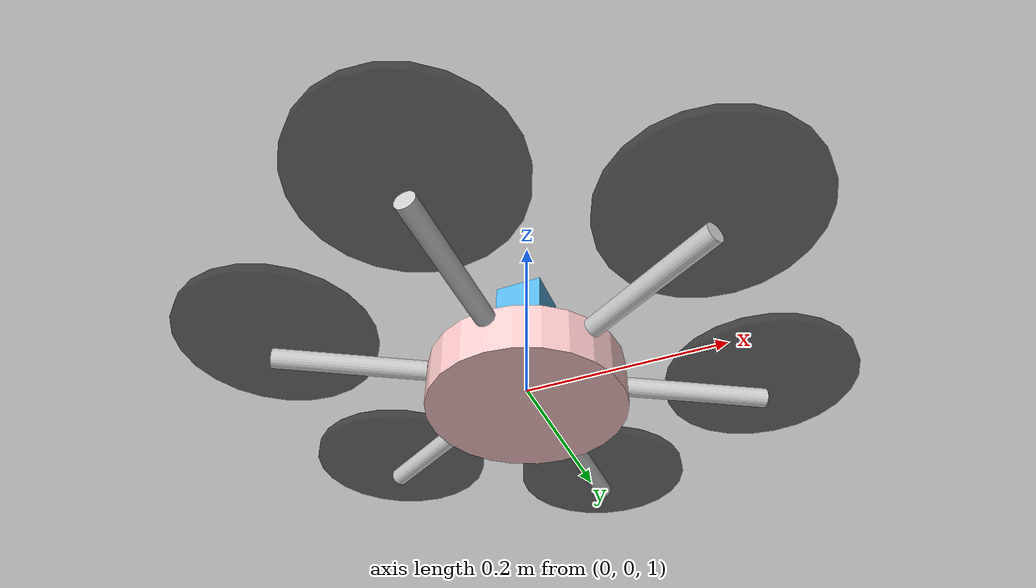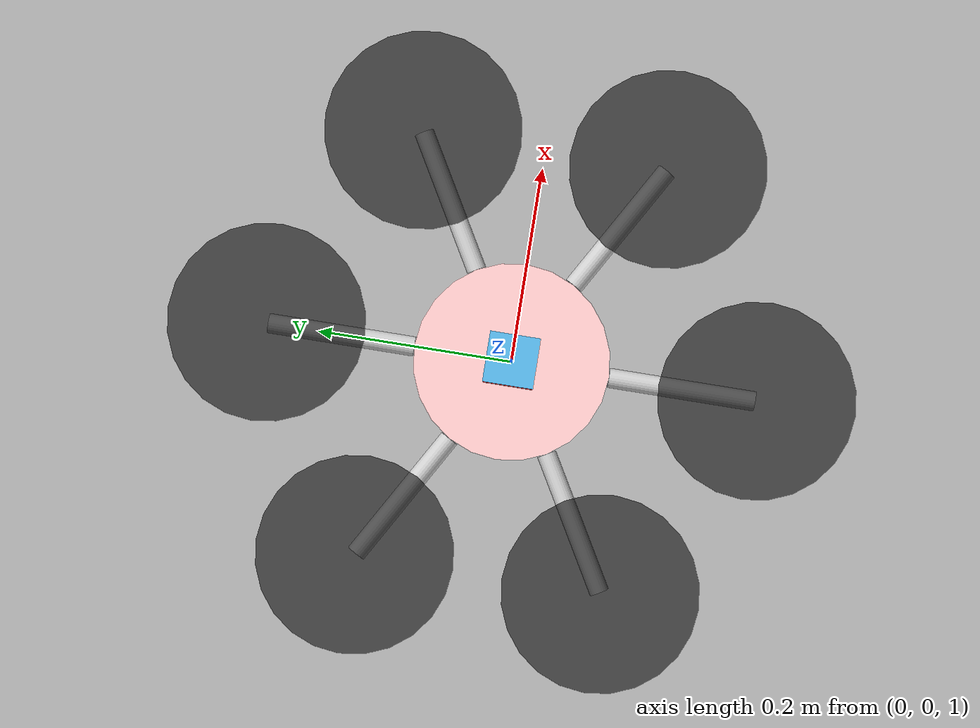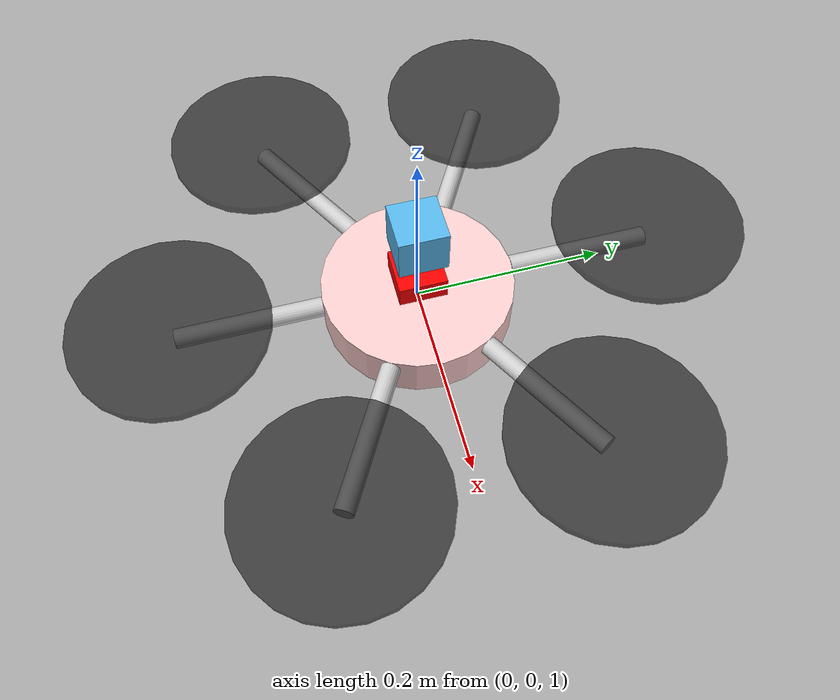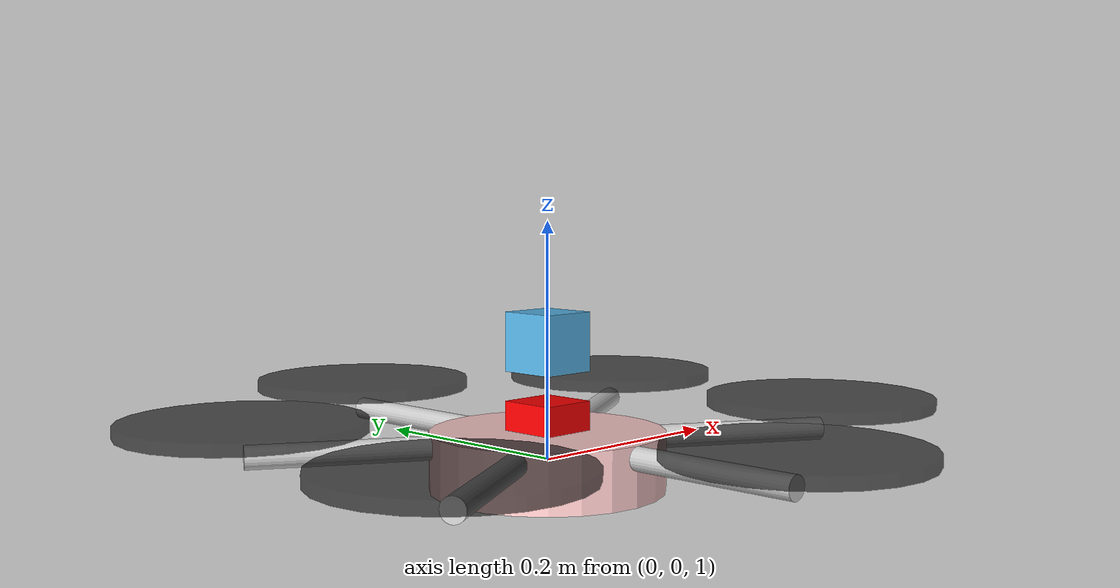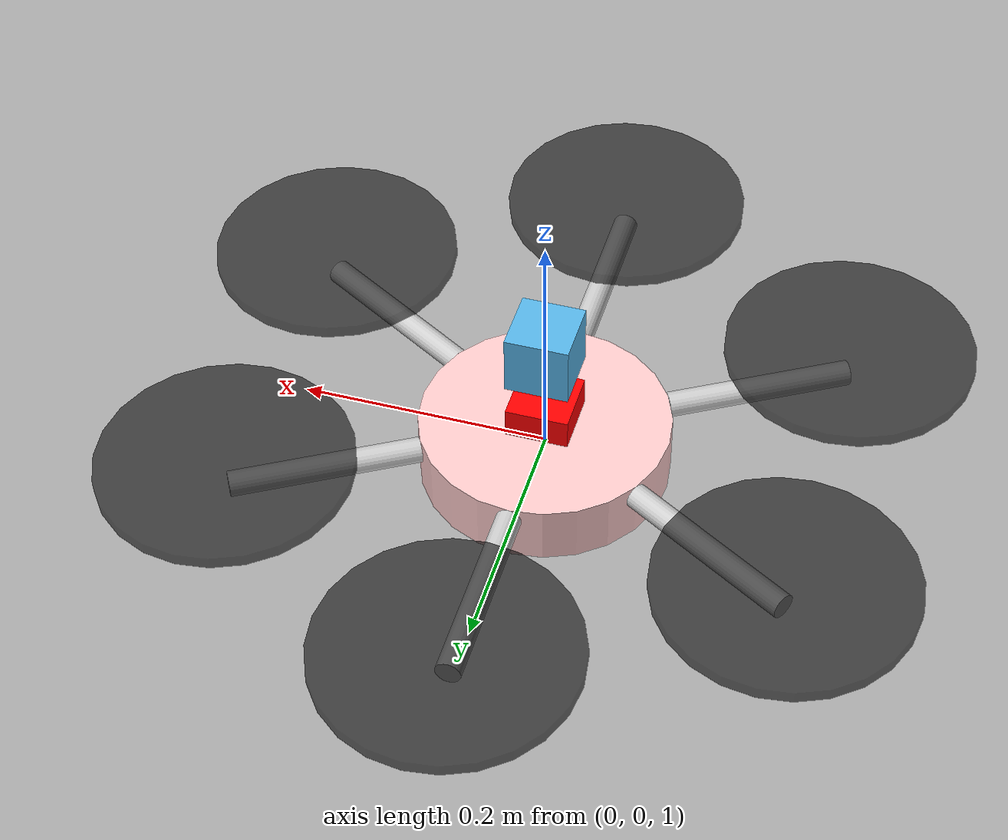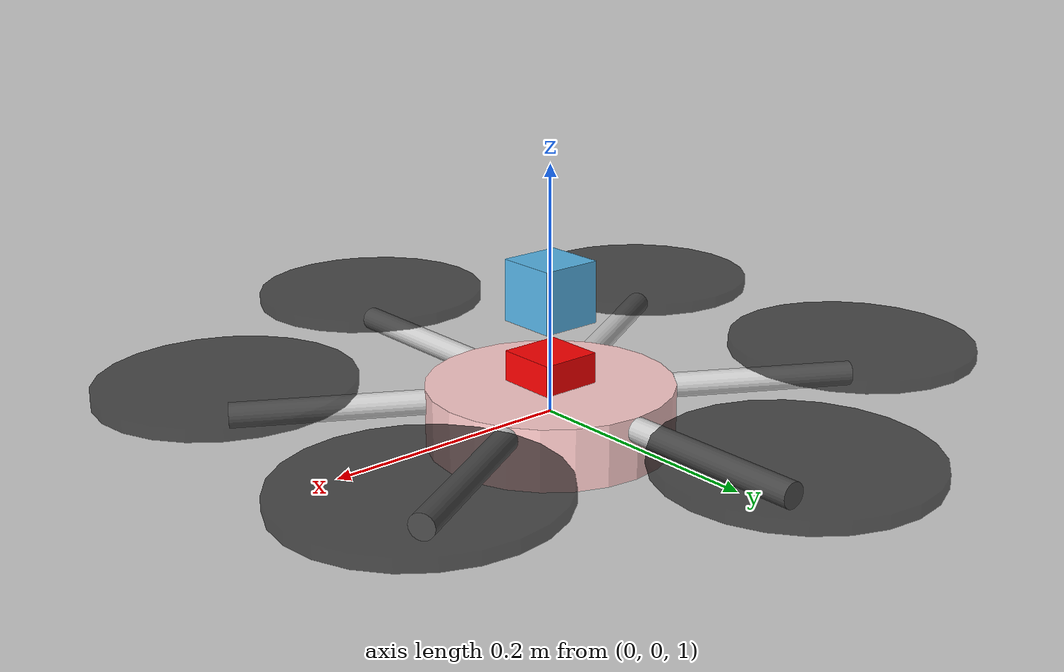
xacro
<?xml version="1.0"?>

<robot xmlns:xacro="http://wiki.ros.org/xacro" name="drone">

  <!-- properties -->
  <xacro:property name="frame_radius" value="0.1"/>
  <xacro:property name="frame_height" value="0.05"/>
  <xacro:property name="frame_mass" value="0.88"/>
  <xacro:property name="arm_radius" value="0.01"/>
  <xacro:property name="arm_length" value="0.15"/>
  <xacro:property name="arm_mass" value="0.01"/>
  <xacro:property name="propeller_radius" value="0.1"/>
  <xacro:property name="propeller_height" value="0.01"/>
  <xacro:property name="propeller_height_offset" value="0.025"/>
  <xacro:property name="propeller_mass" value="0.01"/>

<xacro:macro name="cylinder_inertial" params="radius height mass *origin">
  <inertial>
    <mass value="${mass}"/>
    <xacro:insert_block name="origin"/>
    <inertia
      ixx="${0.0833333 * mass * (3 * radius * radius + height * height)}"
      ixy="0.0"
      ixz="0.0"
      iyy="${0.0833333 * mass * (3 * radius * radius + height * height)}"
      iyz="0.0"
      izz="${0.5 * mass * radius * radius}"/>
  </inertial>
</xacro:macro>

<link name="drone">
  <visual>
    <origin xyz="0 0 1" rpy="0 0 0"/>
    <geometry>
      <cylinder radius="${frame_radius}" length="${frame_height}"/>
    </geometry>
    <material name="frame_material"/>
  </visual>
  <collision>
    <origin xyz="0 0 1" rpy="0 0 0"/>
    <geometry>
      <cylinder radius="${frame_radius}" length="${frame_height}"/>
    </geometry>
  </collision>
  <xacro:cylinder_inertial radius="${frame_radius}" height="${frame_height}" mass="${frame_mass}">
    <origin xyz="0 0 1" rpy="0 0 0" />
  </xacro:cylinder_inertial>
</link>

<link name="camera_link">
  <visual>
  <origin xyz="0 0 1.05" rpy="0 0 -1.5708"/>
    <geometry>
      <box size="0.05 0.05 0.05"/>
    </geometry>
  </visual>
  <collision>
    <geometry>
      <box size="0.05 0.05 0.05"/>
    </geometry>
  </collision>
  <inertial>
    <mass value="0.0000000001"/>
    <origin rpy="0 0 0" xyz="0 0 1"/>
    <inertia ixx="0.000001" ixy="0.000001" ixz="0.000001" iyy="0.000001" iyz="0.000001" izz="0.000001"/>
  </inertial>
  <material name="camera_material"/>
</link>

<joint name="camera_joint" type="fixed">
  <parent link="drone"/>
  <child link="camera_link"/>
  <origin xyz="0 0 0.05" rpy="0 0 0"/>
  <axis xyz="1 0 0"/>
  <limit lower="-3.14159" upper="3.14159" effort="10" velocity="3.14159"/>
</joint>

<xacro:macro name="arm" params="i">
  <link name="arm${i}">
    <visual>
      <origin xyz="${cos((i-1)*pi/3+pi/6)*(frame_radius+arm_length/2)} ${sin((i-1)*pi/3+pi/6)*(frame_radius+arm_length/2)} ${(frame_height+2)/2-arm_radius}" rpy="0 ${pi/2} ${(i-1)*pi/3+pi/6}"/>
      <geometry>
        <cylinder radius="${arm_radius}" length="${arm_length}"/>
      </geometry>
      <material name="arm_material"/>
    </visual>
    <collision>
      <origin xyz="${cos((i-1)*pi/3+pi/6)*(frame_radius+arm_length/2)} ${sin((i-1)*pi/3+pi/6)*(frame_radius+arm_length/2)} ${(frame_height+2)/2-arm_radius}" rpy="0 ${pi/2} ${(i-1)*pi/3+pi/6}"/>
      <geometry>
        <cylinder radius="${arm_radius}" length="${arm_length}"/>
      </geometry>
    </collision>
    <xacro:cylinder_inertial radius="${arm_radius}" height="${arm_length}" mass="${arm_mass}">
      <origin xyz="${cos((i-1)*pi/3+pi/6)*(frame_radius+arm_length/2)} ${sin((i-1)*pi/3+pi/6)*(frame_radius+arm_length/2)} ${(frame_height+2)/2-arm_radius}" rpy="0 ${pi/2} ${(i-1)*pi/3+pi/6}"/>
    </xacro:cylinder_inertial>
  </link>
<joint name="frame_arm${i}" type="fixed">
  <parent link="drone"/>
  <child link="arm${i}"/>
</joint>
    <gazebo reference="arm${i}">
      <material>Gazebo/Blue</material>
    </gazebo>
</xacro:macro>

<xacro:macro name="propeller" params="i mat">
  <link name="propeller${i}">
    <visual>
      <origin xyz="0 0 1" rpy="0 0 0"/>
      <geometry>
        <cylinder radius="${propeller_radius}" length="${propeller_height}"/>
      </geometry>
      <material name="propeller_material"/>
    </visual>
    <collision>
      <origin xyz="0 0 1" rpy="0 0 0"/>
      <geometry>
        <cylinder radius="${propeller_radius}" length="${propeller_height}"/>
      </geometry>
    </collision>
    <xacro:cylinder_inertial radius="${propeller_radius}" height="${propeller_height}" mass="${propeller_mass}">
      <origin xyz="0 0 1" rpy="0 0 0"/>
    </xacro:cylinder_inertial>
  </link>
<joint name="arm${i}_propeller${i}" type="revolute">
  <parent link="arm${i}"/>
  <child link="propeller${i}"/>
  <origin xyz="${cos((i-1)*pi/3+pi/6)*(frame_radius+arm_length)} ${sin((i-1)*pi/3+pi/6)*(frame_radius+arm_length)} ${frame_height/2-arm_radius+propeller_height_offset}" rpy="0 0 0"/>
  <axis xyz="1 0 0"/>
  <limit lower="0" upper="0" effort="0" velocity="0"/>
</joint>
    <gazebo reference="propeller${i}">
      <material>${mat}</material>
    </gazebo>
</xacro:macro>

<!-- Xacro -->
<xacro:arm i="1"/>
<xacro:arm i="2"/>
<xacro:arm i="3"/>
<xacro:arm i="4"/>
<xacro:arm i="5"/>
<xacro:arm i="6"/>

<xacro:propeller i="1" mat="Gazebo/RedTransparent"/>
<xacro:propeller i="2" mat="Gazebo/BlackTransparent"/>
<xacro:propeller i="3" mat="Gazebo/BlueTransparent"/>
<xacro:propeller i="4" mat="Gazebo/BlueTransparent"/>
<xacro:propeller i="5" mat="Gazebo/BlackTransparent"/>
<xacro:propeller i="6" mat="Gazebo/RedTransparent"/>

  <!-- materials-->

<gazebo reference="drone">
  <material>Gazebo/Orange</material>
</gazebo>

<gazebo reference="depth_camera">
  <material>Gazebo/Yellow</material>
</gazebo>

<material name="frame_material">
  <color rgba="1 0.8 0.8 1"/>
</material>

<material name="arm_material">
  <color rgba="0.8 0.8 0.8 1"/>
</material>

<material name="propeller_material">
  <color rgba="0 0 0 0.6"/>
</material>

<material name="camera_material">
  <color rgba="1 0 0 0.6"/>
</material>

<link name="hokuyo_link">
	    <collision>
	      <origin xyz="0 0 1.025" rpy="0 0 0"/>
	      <geometry>
		<box size="0.05 0.05 0.05"/>
	      </geometry>
	    </collision>
	    <visual>
	      <origin xyz="0 0 1.025" rpy="0 0 0"/>
	      <geometry>
		<box size="0.05 0.05 0.05"/>
	      </geometry>
	      <material name="red">
		<color rgba="1 0 0 1"/>
	      </material>
	    </visual>
	    <inertial>
	      <mass value="1e-5" />
	      <origin xyz="0 0 0" rpy="0 0 0"/>
	      <inertia ixx="1e-6" ixy="0" ixz="0" iyy="1e-6" iyz="0" izz="1e-6" />
	    </inertial>
 	 </link>

 	 <joint name="hokuyo_joint" type="fixed">
	    <axis xyz="0 1 0" />
	    <origin xyz="0.0 0 0.0" rpy="0 0 0"/>
	    <parent link="drone"/>
	    <child link="hokuyo_link"/>
	 </joint>

<!-- Plugins -->

<!-- Z Controller -->
<gazebo>
    <plugin name="drone_plugin" filename="libdrone_plugin.so">
      <updateRate>100</updateRate>
    </plugin>
  </gazebo>

<!-- X-Y Controller -->
<gazebo>
  <plugin name="object_controller" filename="libgazebo_ros_planar_move.so">
    <commandTopic>cmd_vel</commandTopic>
    <odometryTopic>odom</odometryTopic>
    <odometryFrame>odom</odometryFrame>
    <odometryRate>20.0</odometryRate>
    <robotBaseFrame>drone</robotBaseFrame>
  </plugin>
</gazebo>

 <gazebo>
    <plugin name="gazebo_ros_control" filename="libgazebo_ros_control.so">
      <legacyModeNS>true</legacyModeNS>
    </plugin>
  </gazebo>

   <!-- camera -->
  <gazebo reference="camera_link">
    <sensor type="camera" name="camera1">
      <update_rate>30.0</update_rate>
      <camera name="head">
        <horizontal_fov>1.3962634</horizontal_fov>
        <image>
          <width>800</width>
          <height>800</height>
          <format>R8G8B8</format>
        </image>
        <clip>
          <near>0.02</near>
          <far>300</far>
        </clip>
		<noise>
          <type>gaussian</type>
          <mean>0.0</mean>
          <stddev>0.007</stddev>
        </noise>
      </camera>
      <plugin name="camera_controller" filename="libgazebo_ros_camera.so">
        <alwaysOn>true</alwaysOn>
        <updateRate>0.0</updateRate>
        <cameraName>camera1</cameraName>
        <imageTopicName>image_raw</imageTopicName>
        <cameraInfoTopicName>camera_info</cameraInfoTopicName>
        <frameName>camera_link</frameName>
        <hackBaseline>0.07</hackBaseline>
        <distortionK1>0.0</distortionK1>
        <distortionK2>0.0</distortionK2>
        <distortionK3>0.0</distortionK3>
        <distortionT1>0.0</distortionT1>
        <distortionT2>0.0</distortionT2>
      </plugin>
    </sensor>
  </gazebo>

<!-- Depth Camera -->
<gazebo reference="drone">
  <sensor name="frame_camera" type="depth">
    <update_rate>100</update_rate>
    <camera>
      <horizontal_fov>1.3962634</horizontal_fov>
      <image>
        <width>640</width>
        <height>480</height>
        <format>R8G8B8</format>
      </image>
      <clip>
        <near>0.05</near>
        <far>3</far>
      </clip>
    </camera>
    <plugin name="frame_controller" filename="libgazebo_ros_openni_kinect.so">
      <baseline>0.2</baseline>
      <alwaysOn>true</alwaysOn>
      <updateRate>0.0</updateRate>
      <cameraName>depth_camera_ir</cameraName>
      <imageTopicName>/depth_camera/color/image_raw</imageTopicName>
      <cameraInfoTopicName>/depth_camera/color/camera_info</cameraInfoTopicName>
      <depthImageTopicName>/depth_camera/depth/image_raw</depthImageTopicName>
      <depthImageInfoTopicName>/depth_camera/depth/camera_info</depthImageInfoTopicName>
      <pointCloudTopicName>/depth_camera/depth/points</pointCloudTopicName>
      <frameName>drone</frameName>
      <pointCloudCutoff>0.5</pointCloudCutoff>
      <pointCloudCutoffMax>3.0</pointCloudCutoffMax>
      <distortionK1>0.00000001</distortionK1>
      <distortionK2>0.00000001</distortionK2>
      <distortionK3>0.00000001</distortionK3>
      <distortionT1>0.00000001</distortionT1>
      <distortionT2>0.00000001</distortionT2>
      <CxPrime>0</CxPrime>
      <Cx>0</Cx>
      <Cy>0</Cy>
      <focalLength>0</focalLength>
      <hackBaseline>0</hackBaseline>
    </plugin>
  </sensor>
</gazebo>

<gazebo reference="hokuyo_link">
    <sensor type="gpu_ray" name="head_hokuyo_sensor">
      <pose>0 0 0 0 0 0</pose>
      <visualize>false</visualize>
      <update_rate>40</update_rate>
      <ray>
        <scan>
          <horizontal>
            <samples>720</samples>
            <resolution>1</resolution>
            <min_angle>-1.570796</min_angle>
            <max_angle>1.570796</max_angle>
          </horizontal>
        </scan>
        <range>
          <min>0.10</min>
          <max>30.0</max>
          <resolution>0.01</resolution>
        </range>
        <noise>
          <type>gaussian</type>
          <mean>0.0</mean>
          <stddev>0.01</stddev>
        </noise>
      </ray>
      <plugin name="gazebo_ros_head_hokuyo_controller" filename="libgazebo_ros_gpu_laser.so">
        <topicName>/laser/scan</topicName>
        <frameName>hokuyo_link</frameName>
      </plugin>
    </sensor>
  </gazebo>

</robot>
